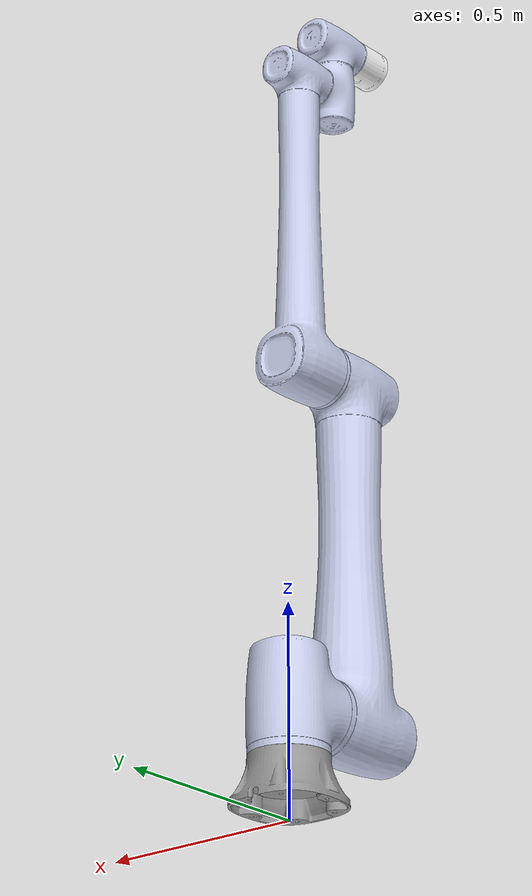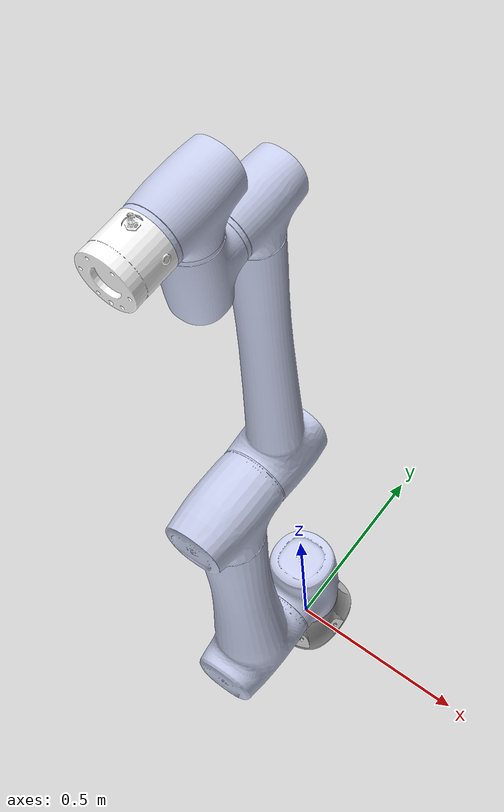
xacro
<?xml version="1.0"?>
<robot name="cr20af_robot" xmlns:xacro="http://ros.org/wiki/xacro">
  <link name="dummy_link" />
  <link
    name="base_link">
    <inertial>
      <origin
        xyz="2.3717E-05 0.00020987 0.065475"
        rpy="0 0 0" />
      <mass
        value="2.9" />
      <inertia
        ixx="0.0078192"
        ixy="-6.2103E-07"
        ixz="-1.9811E-06"
        iyy="0.0077118"
        iyz="-2.2829E-05"
        izz="0.012341" />
    </inertial>
    <visual>
      <origin
        xyz="0 0 0"
        rpy="0 0 0" />
      <geometry>
        <mesh
          filename="file://$(find cra_description)/meshes/cr20af/base_link.STL" />
      </geometry>
      <material
        name="">
        <color
          rgba="0.59216 0.59216 0.59216 1" />
      </material>
    </visual>
    <collision>
      <origin
        xyz="0 0 0"
        rpy="0 0 0" />
      <geometry>
        <mesh
          filename="file://$(find cra_description)/meshes/cr20af/base_link.STL" />
      </geometry>
    </collision>
  </link>
    <link  name="world"/>
  <joint name="world_joint" type="fixed">
    <origin xyz="0 0 0.03" rpy="0 0 0" />
    <parent link="world" />
    <child  link="dummy_link" />
  </joint>
  <joint name="dummy_joint" type="fixed">
      <parent link="dummy_link" />
      <child  link="base_link" />
    </joint>
  <link
    name="Link1">
    <inertial>
      <origin
        xyz="-1.3205E-07 -0.0072256 0.13128"
        rpy="0 0 0" />
      <mass
        value="18.5" />
      <inertia
        ixx="0.03857"
        ixy="6.2294E-08"
        ixz="3.7106E-07"
        iyy="0.037535"
        iyz="0.00048544"
        izz="0.030549" />
    </inertial>
    <visual>
      <origin
        xyz="0 0 0"
        rpy="0 0 0" />
      <geometry>
        <mesh
          filename="file://$(find cra_description)/meshes/cr20af/J1.STL" />
      </geometry>
      <material
        name="">
        <color
          rgba="0.79216 0.81961 0.93333 1" />
      </material>
    </visual>
    <collision>
      <origin
        xyz="0 0 0"
        rpy="0 0 0" />
      <geometry>
        <mesh
          filename="file://$(find cra_description)/meshes/cr20af/J1.STL" />
      </geometry>
    </collision>
  </link>
  <joint
    name="joint1"
    type="revolute">
    <origin
      xyz="0 0 0.106"
      rpy="0 0 0" />
    <parent
      link="base_link" />
    <child
      link="Link1" />
    <axis
      xyz="0 0 1" />
    <limit
      lower="-6.2831"
      upper="6.2831"
      effort="100"
      velocity="3.14" />
  </joint>
  <link
    name="Link2">
    <inertial>
      <origin
        xyz="-1.38E-06 -0.12595 0.34046"
        rpy="0 0 0" />
      <mass
        value="35.9" />
      <inertia
        ixx="1.8933"
        ixy="-5.9217E-07"
        ixz="1.1868E-05"
        iyy="1.884"
        iyz="0.022501"
        izz="0.086168" />
    </inertial>
    <visual>
      <origin
        xyz="0 0 0"
        rpy="0 0 0" />
      <geometry>
        <mesh
          filename="file://$(find cra_description)/meshes/cr20af/J2.STL" />
      </geometry>
      <material
        name="">
        <color
          rgba="0.79216 0.81961 0.93333 1" />
      </material>
    </visual>
    <collision>
      <origin
        xyz="0 0 0"
        rpy="0 0 0" />
      <geometry>
        <mesh
          filename="file://$(find cra_description)/meshes/cr20af/J2.STL" />
      </geometry>
    </collision>
  </link>
  <joint
    name="joint2"
    type="revolute">
    <origin
      xyz="0 -0.0965 0.124"
      rpy="0 0 0" />
    <parent
      link="Link1" />
    <child
      link="Link2" />
    <axis
      xyz="0 -1 0" />
    <limit
      lower="-6.2831"
      upper="6.2831"
      effort="100"
      velocity="3.14" />
  </joint>
  <link
    name="Link3">
    <inertial>
      <origin
        xyz="5.4361E-06 0.07653 0.21729"
        rpy="0 0 0" />
      <mass
        value="8.7" />
      <inertia
        ixx="0.42094"
        ixy="-6.5011E-07"
        ixz="2.302E-05"
        iyy="0.42027"
        iyz="-0.0016083"
        izz="0.013355" />
    </inertial>
    <visual>
      <origin
        xyz="0 0 0"
        rpy="0 0 0" />
      <geometry>
        <mesh
          filename="file://$(find cra_description)/meshes/cr20af/J3.STL" />
      </geometry>
      <material
        name="">
        <color
          rgba="0.79216 0.81961 0.93333 1" />
      </material>
    </visual>
    <collision>
      <origin
        xyz="0 0 0"
        rpy="0 0 0" />
      <geometry>
        <mesh
          filename="file://$(find cra_description)/meshes/cr20af/J3.STL" />
      </geometry>
    </collision>
  </link>
  <joint
    name="joint3"
    type="revolute">
    <origin
      xyz="0 -0.0268 0.8252"
      rpy="0 0 0" />
    <parent
      link="Link2" />
    <child
      link="Link3" />
    <axis
      xyz="0 -1 0" />
    <limit
      lower="-2.9321"
      upper="2.9321"
      effort="100"
      velocity="3.89" />
  </joint>
  <link
    name="Link4">
    <inertial>
      <origin
        xyz="3.1771E-06 -0.051635 0.0086353"
        rpy="0 0 0" />
      <mass
        value="3.23" />
      <inertia
        ixx="0.0015082"
        ixy="-1.6561E-06"
        ixz="-5.0226E-07"
        iyy="0.0014391"
        iyz="-3.1847E-05"
        izz="0.0012089" />
    </inertial>
    <visual>
      <origin
        xyz="0 0 0"
        rpy="0 0 0" />
      <geometry>
        <mesh
          filename="file://$(find cra_description)/meshes/cr20af/J4.STL" />
      </geometry>
      <material
        name="">
        <color
          rgba="0.79216 0.81961 0.93333 1" />
      </material>
    </visual>
    <collision>
      <origin
        xyz="0 0 0"
        rpy="0 0 0" />
      <geometry>
        <mesh
          filename="file://$(find cra_description)/meshes/cr20af/J4.STL" />
      </geometry>
    </collision>
  </link>
  <joint
    name="joint4"
    type="revolute">
    <origin
      xyz="-6.0194E-05 0.0057 0.74601"
      rpy="0 0 0" />
    <parent
      link="Link3" />
    <child
      link="Link4" />
    <axis
      xyz="0 -1 0" />
    <limit
      lower="-6.2831"
      upper="6.2831"
      effort="100"
      velocity="3.89" />
  </joint>
  <link
    name="Link5">
    <inertial>
      <origin
        xyz="-8.4434E-06 -0.0086407 0.051636"
        rpy="0 0 0" />
      <mass
        value="3.25" />
      <inertia
        ixx="0.0015082"
        ixy="-4.9765E-07"
        ixz="-1.6507E-06"
        iyy="0.0012088"
        iyz="-3.1857E-05"
        izz="0.0014391" />
    </inertial>
    <visual>
      <origin
        xyz="0 0 0"
        rpy="0 0 0" />
      <geometry>
        <mesh
          filename="file://$(find cra_description)/meshes/cr20af/J5.STL" />
      </geometry>
      <material
        name="">
        <color
          rgba="0.79216 0.81961 0.93333 1" />
      </material>
    </visual>
    <collision>
      <origin
        xyz="0 0 0"
        rpy="0 0 0" />
      <geometry>
        <mesh
          filename="file://$(find cra_description)/meshes/cr20af/J5.STL" />
      </geometry>
    </collision>
  </link>
  <joint
    name="joint5"
    type="revolute">
    <origin
      xyz="0.00012536 -0.057999 0.070795"
      rpy="0 0 0" />
    <parent
      link="Link4" />
    <child
      link="Link5" />
    <axis
      xyz="0 0 1" />
    <limit
      lower="-6.2831"
      upper="6.2831"
      effort="100"
      velocity="3.89" />
  </joint>
  <link
    name="Link6">
    <inertial>
      <origin
        xyz="-1.4701E-05 -0.041324 0.0001913"
        rpy="0 0 0" />
      <mass
        value="0.95" />
      <inertia
        ixx="0.00066872"
        ixy="-2.0626E-07"
        ixz="-1.0811E-08"
        iyy="0.00072199"
        iyz="1.5946E-06"
        izz="0.00067181" />
    </inertial>
    <visual>
      <origin
        xyz="0 0 0"
        rpy="0 0 0" />
      <geometry>
        <mesh
          filename="file://$(find cra_description)/meshes/cr20af/J6.STL" />
      </geometry>
      <material
        name="">
        <color
          rgba="1 1 1 1" />
      </material>
    </visual>
    <collision>
      <origin
        xyz="0 0 0"
        rpy="0 0 0" />
      <geometry>
        <mesh
          filename="file://$(find cra_description)/meshes/cr20af/J6.STL" />
      </geometry>
    </collision>
  </link>
  <joint
    name="joint6"
    type="revolute">
    <origin
      xyz="-6.6123E-05 -0.070502 0.058"
      rpy="0 0 0" />
    <parent
      link="Link5" />
    <child
      link="Link6" />
    <axis
      xyz="0 -1 0" />
    <limit
      lower="-6.2831"
      upper="6.2831"
      effort="100"
      velocity="3.89" />
  </joint>
  <link name="tool0"/>
  <joint name="tool_joint" type="fixed">
    <origin xyz="0 0 0" rpy="4.7124 0 3.14159" />
    <parent link="Link6" />
    <child link="tool0" />
  </joint>
  <gazebo reference="base_link">
        <gravity>false</gravity>
        <selfCollide>true</selfCollide>
    </gazebo>
    <gazebo reference="Link1">
        <gravity>false</gravity>
        <selfCollide>true</selfCollide>
    </gazebo>
    <gazebo reference="Link2">
        <gravity>false</gravity>
        <selfCollide>true</selfCollide>
    </gazebo>
    <gazebo reference="Link3">
        <gravity>false</gravity>
        <selfCollide>true</selfCollide>
    </gazebo>
    <gazebo reference="Link4">
        <gravity>false</gravity>
        <selfCollide>true</selfCollide>
    </gazebo>
    <gazebo reference="Link5">
        <gravity>false</gravity>
        <selfCollide>true</selfCollide>
    </gazebo>
    <gazebo reference="Link6">
        <gravity>false</gravity>
        <selfCollide>true</selfCollide>
    </gazebo>
    <!-- 在运行demo.launch.py时，需要注释这个ros2_control节点，因为它使用了xxx.ros2_control.xacro来生成了ros2_control节点-->
    <ros2_control name="GazeboSystem" type="system">
        <hardware>
            <plugin>gazebo_ros2_control/GazeboSystem</plugin>
        </hardware>
        <joint name="joint1">
            <command_interface name="position">
                <param name="min">-1</param>
                <param name="max">1</param>
            </command_interface>
            <state_interface name="position">
                <param name="initial_value">0.0</param>
            </state_interface>
            <state_interface name="velocity"/>
        </joint>
        <joint name="joint2">
            <command_interface name="position">
                <param name="min">-1</param>
                <param name="max">1</param>
            </command_interface>
            <state_interface name="position">
                <param name="initial_value">0.0</param>
            </state_interface>
            <state_interface name="velocity"/>
        </joint>
        <joint name="joint3">
            <command_interface name="position">
                <param name="min">-1</param>
                <param name="max">1</param>
            </command_interface>
            <state_interface name="position">
                <param name="initial_value">0.0</param>
            </state_interface>
            <state_interface name="velocity"/>
        </joint>
        <joint name="joint4">
            <command_interface name="position">
                <param name="min">-1</param>
                <param name="max">1</param>
            </command_interface>
            <state_interface name="position">
                <param name="initial_value">0.0</param>
            </state_interface>
            <state_interface name="velocity"/>
        </joint>
        <joint name="joint5">
            <command_interface name="position">
                <param name="min">-1</param>
                <param name="max">1</param>
            </command_interface>
            <state_interface name="position">
                <param name="initial_value">0.0</param>
            </state_interface>
            <state_interface name="velocity"/>
        </joint>
        <joint name="joint6">
            <command_interface name="position">
                <param name="min">-1</param>
                <param name="max">1</param>
            </command_interface>
            <state_interface name="position">
                <param name="initial_value">0.0</param>
            </state_interface>
            <state_interface name="velocity"/>
        </joint>
    </ros2_control>

    <gazebo>
        <plugin filename="libgazebo_ros2_control.so" name="gazebo_ros2_control">
            <parameters>$(find cr20af_moveit)/config/ros2_controllers.yaml</parameters>
            <robot_param_node>robot_state_publisher</robot_param_node>
        </plugin>
    </gazebo>
</robot>
